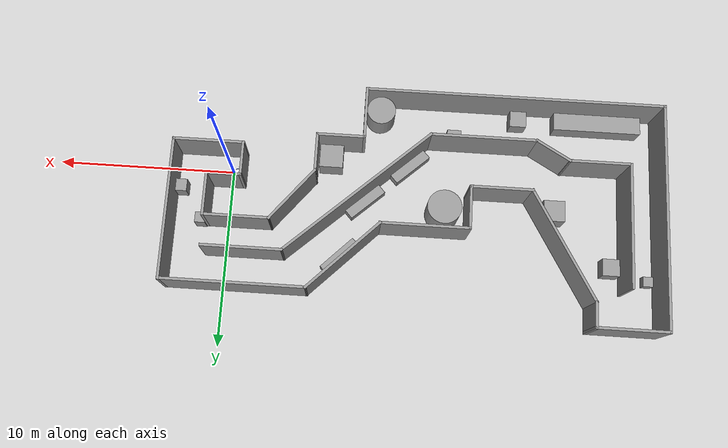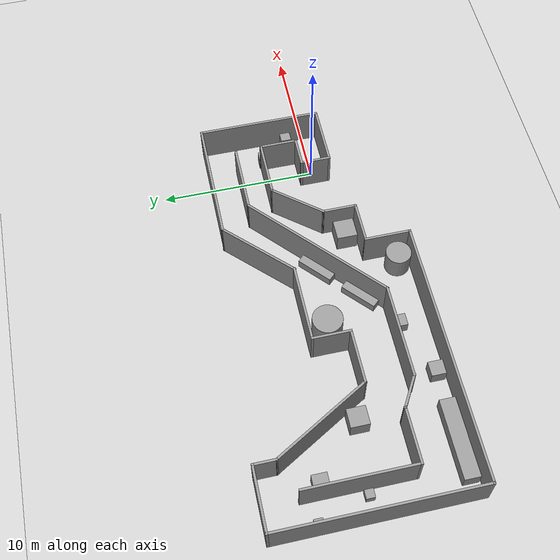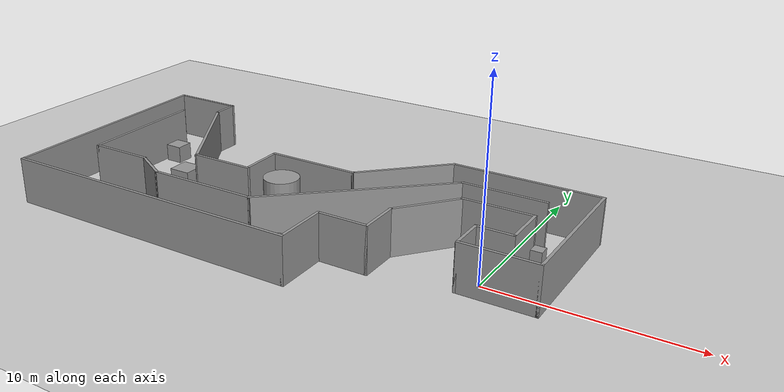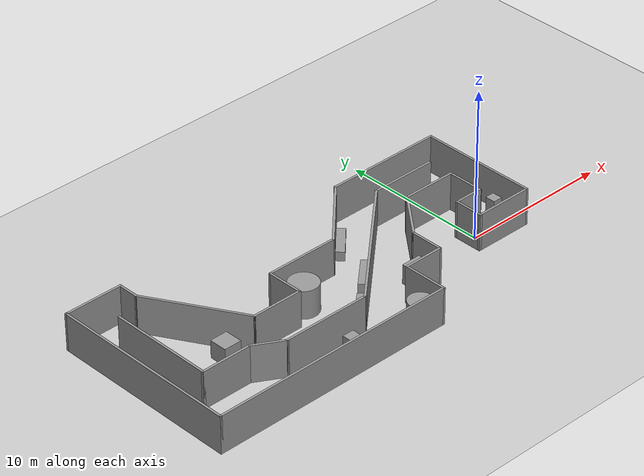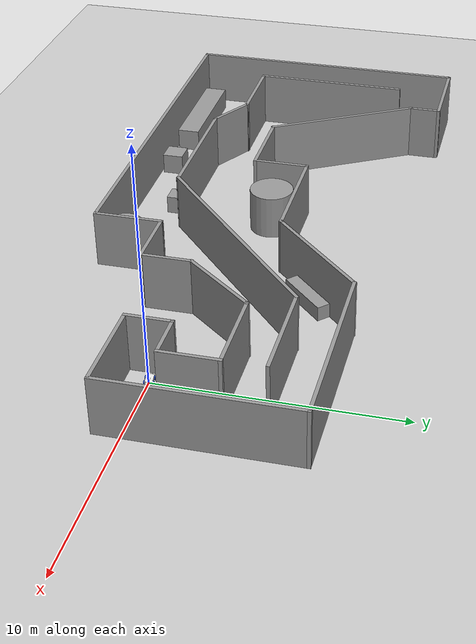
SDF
<sdf version="1.7">
 <world name="default">
  <light name="sun" type="directional">
   <pose>0 0 10 0 -0 0</pose>
   <diffuse>0.8 0.8 0.8 1</diffuse>
   <specular>0.2 0.2 0.2 1</specular>
   <attenuation>
    <range>1000</range>
    <constant>0.9</constant>
    <linear>0.01</linear>
    <quadratic>0.001</quadratic>
   </attenuation>
   <direction>-0.5 0.1 -0.9</direction>
   <spot><inner_angle>0</inner_angle><outer_angle>0</outer_angle><falloff>0</falloff></spot>
  </light>
  <model name="ground_plane">
   <static>1</static>
   <link name="link">
    <collision name="collision">
     <geometry><plane><normal>0 0 1</normal><size>100 100</size></plane></geometry>
     <surface><friction><ode><mu>100</mu><mu2>50</mu2></ode></friction></surface>
    </collision>
    <visual name="visual">
     <cast_shadows>0</cast_shadows>
     <geometry><plane><normal>0 0 1</normal><size>100 100</size></plane></geometry>
     <material>
      <script><uri>file://media/materials/scripts/gazebo.material</uri><name>Gazebo/Grey</name></script>
     </material>
    </visual>
   </link>
  </model>
  <gravity>0 0 -9.8</gravity>
  <magnetic_field>6e-06 2.3e-05 -4.2e-05</magnetic_field>
  <atmosphere type="adiabatic"/>
  <physics type="ode">
   <max_step_size>0.001</max_step_size>
   <real_time_factor>1</real_time_factor>
   <real_time_update_rate>1000</real_time_update_rate>
  </physics>
  <scene><ambient>0.4 0.4 0.4 1</ambient><background>0.7 0.7 0.7 1</background><shadows>1</shadows></scene>
  <audio><device>default</device></audio>
  <spherical_coordinates>
   <surface_model>EARTH_WGS84</surface_model>
   <latitude_deg>0</latitude_deg>
   <longitude_deg>0</longitude_deg>
   <elevation>0</elevation>
   <heading_deg>0</heading_deg>
  </spherical_coordinates>
  <model name="ackerman3">
   <link name="base_link">
    <inertial>
     <pose>0.016667 0 0.018333 0 -0 0</pose>
     <mass>0.6</mass>
     <inertia>
      <ixx>0.00577167</ixx>
      <ixy>0</ixy>
      <ixz>-0.000916667</ixz>
      <iyy>0.0132717</iyy>
      <iyz>0</iyz>
      <izz>0.015125</izz>
     </inertia>
    </inertial>
    <collision name="base_link_fixed_joint_lump__chassis_collision">
     <geometry><box><size>0.5 0.3 0.15</size></box></geometry>
    </collision>
    <collision name="base_link_fixed_joint_lump__laser_frame_collision_1">
     <pose>0.1 0 0.11 0 -0 0</pose>
     <geometry><cylinder><length>0.04</length><radius>0.05</radius></cylinder></geometry>
    </collision>
    <visual name="base_link_fixed_joint_lump__chassis_visual">
     <geometry><box><size>0.5 0.3 0.15</size></box></geometry>
     <material>
      <script><name>Gazebo/White</name><uri>file://media/materials/scripts/gazebo.material</uri></script>
     </material>
    </visual>
    <visual name="base_link_fixed_joint_lump__laser_frame_visual_1">
     <pose>0.1 0 0.11 0 -0 0</pose>
     <geometry><cylinder><length>0.04</length><radius>0.05</radius></cylinder></geometry>
     <material>
      <script><name>Gazebo/Red</name><uri>file://media/materials/scripts/gazebo.material</uri></script>
     </material>
    </visual>
    <sensor name="laser" type="ray">
     <visualize>1</visualize>
     <update_rate>10</update_rate>
     <ray>
      <scan>
       <horizontal>
        <samples>360</samples>
        <resolution>1</resolution>
        <min_angle>-3.14</min_angle>
        <max_angle>3.14</max_angle>
       </horizontal>
       <vertical><samples>1</samples><min_angle>0</min_angle><max_angle>0</max_angle></vertical>
      </scan>
      <range><min>0.3</min><max>12</max><resolution>0.01</resolution></range>
     </ray>
     <plugin name="laser_controller" filename="libgazebo_ros_ray_sensor.so">
      <ros><remapping>~/out:=scan</remapping></ros>
      <output_type>sensor_msgs/LaserScan</output_type>
      <frame_name>laser_frame</frame_name>
     </plugin>
     <pose>0.1 0 0.11 0 -0 0</pose>
    </sensor>
   </link>
   <joint name="left_steering_joint" type="revolute">
    <pose relative_to="base_link">0.154 0.15 -0.035 0 -0 0</pose>
    <parent>base_link</parent>
    <child>left_steering_link</child>
    <axis>
     <xyz>0 0 1</xyz>
     <limit><lower>-0.41</lower><upper>0.41</upper><effort>100</effort><velocity>0.5</velocity></limit>
     <dynamics><spring_reference>0</spring_reference><spring_stiffness>0</spring_stiffness></dynamics>
    </axis>
   </joint>
   <link name="left_steering_link">
    <pose relative_to="left_steering_joint">0 0 0 0 -0 0</pose>
    <inertial>
     <pose>0 0 0 1.5708 -0 0</pose>
     <mass>0.1</mass>
     <inertia>
      <ixx>2.64333e-05</ixx>
      <ixy>0</ixy>
      <ixz>0</ixz>
      <iyy>2.64333e-05</iyy>
      <iyz>0</iyz>
      <izz>5.12e-05</izz>
     </inertia>
    </inertial>
    <collision name="left_steering_link_collision">
     <pose>0 0 0 1.5708 -0 0</pose>
     <geometry><sphere><radius>0.032</radius></sphere></geometry>
     <surface><friction><ode><mu>0.5</mu><mu2>0.5</mu2></ode></friction></surface>
    </collision>
    <visual name="left_steering_link_visual">
     <pose>0 0 0 1.5708 -0 0</pose>
     <geometry><cylinder><length>0.01</length><radius>0.032</radius></cylinder></geometry>
     <material>
      <script><name>Gazebo/Blue</name><uri>file://media/materials/scripts/gazebo.material</uri></script>
     </material>
    </visual>
   </link>
   <joint name="front_left_wheel_joint" type="revolute">
    <pose relative_to="left_steering_link">0 0.025 0 0 -0 0</pose>
    <parent>left_steering_link</parent>
    <child>front_left_wheel</child>
    <axis>
     <xyz>0 1 0</xyz>
     <limit><lower>-1e+16</lower><upper>1e+16</upper></limit>
     <dynamics><spring_reference>0</spring_reference><spring_stiffness>0</spring_stiffness></dynamics>
    </axis>
   </joint>
   <link name="front_left_wheel">
    <pose relative_to="front_left_wheel_joint">0 0 0 0 -0 0</pose>
    <inertial>
     <pose>0 0 0 1.5708 -0 0</pose>
     <mass>0.1</mass>
     <inertia>
      <ixx>0.000180833</ixx>
      <ixy>0</ixy>
      <ixz>0</ixz>
      <iyy>0.000180833</iyy>
      <iyz>0</iyz>
      <izz>0.00032</izz>
     </inertia>
    </inertial>
    <collision name="front_left_wheel_collision">
     <pose>0 0 0 1.5708 -0 0</pose>
     <geometry><sphere><radius>0.08</radius></sphere></geometry>
     <surface><friction><ode><mu>0.5</mu><mu2>0.5</mu2></ode></friction></surface>
    </collision>
    <visual name="front_left_wheel_visual">
     <pose>0 0 0 1.5708 -0 0</pose>
     <geometry><cylinder><length>0.05</length><radius>0.08</radius></cylinder></geometry>
     <material>
      <script><name>Gazebo/Blue</name><uri>file://media/materials/scripts/gazebo.material</uri></script>
     </material>
    </visual>
   </link>
   <joint name="rear_left_wheel_joint" type="revolute">
    <pose relative_to="base_link">-0.154 0.175 -0.035 0 -0 0</pose>
    <parent>base_link</parent>
    <child>rear_left_wheel</child>
    <axis>
     <xyz>0 1 0</xyz>
     <limit><lower>-1e+16</lower><upper>1e+16</upper></limit>
     <dynamics><spring_reference>0</spring_reference><spring_stiffness>0</spring_stiffness></dynamics>
    </axis>
   </joint>
   <link name="rear_left_wheel">
    <pose relative_to="rear_left_wheel_joint">0 0 0 0 -0 0</pose>
    <inertial>
     <pose>0 0 0 1.5708 -0 0</pose>
     <mass>0.1</mass>
     <inertia>
      <ixx>0.000180833</ixx>
      <ixy>0</ixy>
      <ixz>0</ixz>
      <iyy>0.000180833</iyy>
      <iyz>0</iyz>
      <izz>0.00032</izz>
     </inertia>
    </inertial>
    <collision name="rear_left_wheel_collision">
     <pose>0 0 0 1.5708 -0 0</pose>
     <geometry><sphere><radius>0.08</radius></sphere></geometry>
     <surface><friction><ode><mu>0.5</mu><mu2>0.5</mu2></ode></friction></surface>
    </collision>
    <visual name="rear_left_wheel_visual">
     <pose>0 0 0 1.5708 -0 0</pose>
     <geometry><cylinder><length>0.05</length><radius>0.08</radius></cylinder></geometry>
     <material>
      <script><name>Gazebo/Blue</name><uri>file://media/materials/scripts/gazebo.material</uri></script>
     </material>
    </visual>
   </link>
   <joint name="rear_right_wheel_joint" type="revolute">
    <pose relative_to="base_link">-0.154 -0.175 -0.035 0 -0 0</pose>
    <parent>base_link</parent>
    <child>rear_right_wheel</child>
    <axis>
     <xyz>0 1 0</xyz>
     <limit><lower>-1e+16</lower><upper>1e+16</upper></limit>
     <dynamics><spring_reference>0</spring_reference><spring_stiffness>0</spring_stiffness></dynamics>
    </axis>
   </joint>
   <link name="rear_right_wheel">
    <pose relative_to="rear_right_wheel_joint">0 0 0 0 -0 0</pose>
    <inertial>
     <pose>0 0 0 1.5708 -0 0</pose>
     <mass>0.1</mass>
     <inertia>
      <ixx>0.000180833</ixx>
      <ixy>0</ixy>
      <ixz>0</ixz>
      <iyy>0.000180833</iyy>
      <iyz>0</iyz>
      <izz>0.00032</izz>
     </inertia>
    </inertial>
    <collision name="rear_right_wheel_collision">
     <pose>0 0 0 1.5708 -0 0</pose>
     <geometry><sphere><radius>0.08</radius></sphere></geometry>
     <surface><friction><ode><mu>0.5</mu><mu2>0.5</mu2></ode></friction></surface>
    </collision>
    <visual name="rear_right_wheel_visual">
     <pose>0 0 0 1.5708 -0 0</pose>
     <geometry><cylinder><length>0.05</length><radius>0.08</radius></cylinder></geometry>
     <material>
      <script><name>Gazebo/Blue</name><uri>file://media/materials/scripts/gazebo.material</uri></script>
     </material>
    </visual>
   </link>
   <joint name="right_steering_joint" type="revolute">
    <pose relative_to="base_link">0.154 -0.15 -0.035 0 -0 0</pose>
    <parent>base_link</parent>
    <child>right_steering_link</child>
    <axis>
     <xyz>0 0 1</xyz>
     <limit><lower>-0.41</lower><upper>0.41</upper><effort>100</effort><velocity>0.5</velocity></limit>
     <dynamics><spring_reference>0</spring_reference><spring_stiffness>0</spring_stiffness></dynamics>
    </axis>
   </joint>
   <link name="right_steering_link">
    <pose relative_to="right_steering_joint">0 0 0 0 -0 0</pose>
    <inertial>
     <pose>0 0 0 1.5708 -0 0</pose>
     <mass>0.1</mass>
     <inertia>
      <ixx>2.64333e-05</ixx>
      <ixy>0</ixy>
      <ixz>0</ixz>
      <iyy>2.64333e-05</iyy>
      <iyz>0</iyz>
      <izz>5.12e-05</izz>
     </inertia>
    </inertial>
    <collision name="right_steering_link_collision">
     <pose>0 0 0 1.5708 -0 0</pose>
     <geometry><sphere><radius>0.032</radius></sphere></geometry>
     <surface><friction><ode><mu>0.5</mu><mu2>0.5</mu2></ode></friction></surface>
    </collision>
    <visual name="right_steering_link_visual">
     <pose>0 0 0 1.5708 -0 0</pose>
     <geometry><cylinder><length>0.01</length><radius>0.032</radius></cylinder></geometry>
     <material>
      <script><name>Gazebo/Blue</name><uri>file://media/materials/scripts/gazebo.material</uri></script>
     </material>
    </visual>
   </link>
   <joint name="front_right_wheel_joint" type="revolute">
    <pose relative_to="right_steering_link">0 -0.025 0 0 -0 0</pose>
    <parent>right_steering_link</parent>
    <child>front_right_wheel</child>
    <axis>
     <xyz>0 1 0</xyz>
     <limit><lower>-1e+16</lower><upper>1e+16</upper></limit>
     <dynamics><spring_reference>0</spring_reference><spring_stiffness>0</spring_stiffness></dynamics>
    </axis>
   </joint>
   <link name="front_right_wheel">
    <pose relative_to="front_right_wheel_joint">0 0 0 0 -0 0</pose>
    <inertial>
     <pose>0 0 0 1.5708 -0 0</pose>
     <mass>0.1</mass>
     <inertia>
      <ixx>0.000180833</ixx>
      <ixy>0</ixy>
      <ixz>0</ixz>
      <iyy>0.000180833</iyy>
      <iyz>0</iyz>
      <izz>0.00032</izz>
     </inertia>
    </inertial>
    <collision name="front_right_wheel_collision">
     <pose>0 0 0 1.5708 -0 0</pose>
     <geometry><sphere><radius>0.08</radius></sphere></geometry>
     <surface><friction><ode><mu>0.5</mu><mu2>0.5</mu2></ode></friction></surface>
    </collision>
    <visual name="front_right_wheel_visual">
     <pose>0 0 0 1.5708 -0 0</pose>
     <geometry><cylinder><length>0.05</length><radius>0.08</radius></cylinder></geometry>
     <material>
      <script><name>Gazebo/Blue</name><uri>file://media/materials/scripts/gazebo.material</uri></script>
     </material>
    </visual>
   </link>
   <static>0</static>
   <plugin name="gazebo_ros2_control" filename="libgazebo_ros2_control.so">
    <parameters>/home/kevin-v/ros2_ws_2401/install/ackerman3/share/ackerman3/config/my_controllers_ack.yaml</parameters>
   </plugin>
   <pose>-0.072761 0.00895 0.114991 0 -1e-06 0.145311</pose>
  </model>
  <model name="challenge">
   <pose>-10.394 1.66925 0 0 -0 0</pose>
   <link name="Wall_0">
    <collision name="Wall_0_Collision">
     <geometry><box><size>2 0.15 2.5</size></box></geometry>
     <pose>0 0 1.25 0 -0 0</pose>
    </collision>
    <visual name="Wall_0_Visual">
     <pose>0 0 1.25 0 -0 0</pose>
     <geometry><box><size>2 0.15 2.5</size></box></geometry>
     <material>
      <script><uri>file://media/materials/scripts/gazebo.material</uri><name>Gazebo/Grey</name></script>
      <ambient>1 1 1 1</ambient>
     </material>
     <meta><layer>0</layer></meta>
    </visual>
    <pose>9.70401 -1.77425 0 0 -0 1.5708</pose>
   </link>
   <link name="Wall_12">
    <collision name="Wall_12_Collision">
     <geometry><box><size>8 0.15 2.5</size></box></geometry>
     <pose>0 0 1.25 0 -0 0</pose>
    </collision>
    <visual name="Wall_12_Visual">
     <pose>0 0 1.25 0 -0 0</pose>
     <geometry><box><size>8 0.15 2.5</size></box></geometry>
     <material>
      <script><uri>file://media/materials/scripts/gazebo.material</uri><name>Gazebo/Grey</name></script>
      <ambient>1 1 1 1</ambient>
     </material>
     <meta><layer>0</layer></meta>
    </visual>
    <pose>13.554 1.22575 0 0 -0 1.5708</pose>
   </link>
   <link name="Wall_13">
    <collision name="Wall_13_Collision">
     <geometry><box><size>8 0.15 2.5</size></box></geometry>
     <pose>0 0 1.25 0 -0 0</pose>
    </collision>
    <visual name="Wall_13_Visual">
     <pose>0 0 1.25 0 -0 0</pose>
     <geometry><box><size>8 0.15 2.5</size></box></geometry>
     <material>
      <script><uri>file://media/materials/scripts/gazebo.material</uri><name>Gazebo/Grey</name></script>
      <ambient>1 1 1 1</ambient>
     </material>
     <meta><layer>0</layer></meta>
    </visual>
    <pose>9.62901 5.15075 0 0 -0 3.14159</pose>
   </link>
   <link name="Wall_18">
    <collision name="Wall_18_Collision">
     <geometry><box><size>5.5 0.15 2.5</size></box></geometry>
     <pose>0 0 1.25 0 -0 0</pose>
    </collision>
    <visual name="Wall_18_Visual">
     <pose>0 0 1.25 0 -0 0</pose>
     <geometry><box><size>5.5 0.15 2.5</size></box></geometry>
     <material>
      <script><uri>file://media/materials/scripts/gazebo.material</uri><name>Gazebo/Grey</name></script>
      <ambient>1 1 1 1</ambient>
     </material>
     <meta><layer>0</layer></meta>
    </visual>
    <pose>3.8125 3.25924 0 0 -0 -2.35619</pose>
   </link>
   <link name="Wall_2">
    <collision name="Wall_2_Collision">
     <geometry><box><size>4 0.15 2.5</size></box></geometry>
     <pose>0 0 1.25 0 -0 0</pose>
    </collision>
    <visual name="Wall_2_Visual">
     <pose>0 0 1.25 0 -0 0</pose>
     <geometry><box><size>4 0.15 2.5</size></box></geometry>
     <material>
      <script><uri>file://media/materials/scripts/gazebo.material</uri><name>Gazebo/Grey</name></script>
      <ambient>1 1 1 1</ambient>
     </material>
     <meta><layer>0</layer></meta>
    </visual>
    <pose>11.629 -2.69925 0 0 -0 0</pose>
   </link>
   <link name="Wall_26">
    <collision name="Wall_26_Collision">
     <geometry><box><size>5 0.15 2.5</size></box></geometry>
     <pose>0 0 1.25 0 -0 0</pose>
    </collision>
    <visual name="Wall_26_Visual">
     <pose>0 0 1.25 0 -0 0</pose>
     <geometry><box><size>5 0.15 2.5</size></box></geometry>
     <material>
      <script><uri>file://media/materials/scripts/gazebo.material</uri><name>Gazebo/Grey</name></script>
      <ambient>1 1 1 1</ambient>
     </material>
     <meta><layer>0</layer></meta>
    </visual>
    <pose>-0.504011 1.36773 0 0 -0 3.14159</pose>
   </link>
   <link name="Wall_27">
    <collision name="Wall_27_Collision">
     <geometry><box><size>2.5 0.15 2.5</size></box></geometry>
     <pose>0 0 1.25 0 -0 0</pose>
    </collision>
    <visual name="Wall_27_Visual">
     <pose>0 0 1.25 0 -0 0</pose>
     <geometry><box><size>2.5 0.15 2.5</size></box></geometry>
     <material>
      <script><uri>file://media/materials/scripts/gazebo.material</uri><name>Gazebo/Grey</name></script>
      <ambient>1 1 1 1</ambient>
     </material>
     <meta><layer>0</layer></meta>
    </visual>
    <pose>-2.92901 0.192726 0 0 -0 -1.5708</pose>
   </link>
   <link name="Wall_28">
    <collision name="Wall_28_Collision">
     <geometry><box><size>3.5 0.15 2.5</size></box></geometry>
     <pose>0 0 1.25 0 -0 0</pose>
    </collision>
    <visual name="Wall_28_Visual">
     <pose>0 0 1.25 0 -0 0</pose>
     <geometry><box><size>3.5 0.15 2.5</size></box></geometry>
     <material>
      <script><uri>file://media/materials/scripts/gazebo.material</uri><name>Gazebo/Grey</name></script>
      <ambient>1 1 1 1</ambient>
     </material>
     <meta><layer>0</layer></meta>
    </visual>
    <pose>-4.60401 -0.982274 0 0 -0 3.14159</pose>
   </link>
   <link name="Wall_30">
    <collision name="Wall_30_Collision">
     <geometry><box><size>7 0.15 2.5</size></box></geometry>
     <pose>0 0 1.25 0 -0 0</pose>
    </collision>
    <visual name="Wall_30_Visual">
     <pose>0 0 1.25 0 -0 0</pose>
     <geometry><box><size>7 0.15 2.5</size></box></geometry>
     <material>
      <script><uri>file://media/materials/scripts/gazebo.material</uri><name>Gazebo/Grey</name></script>
      <ambient>1 1 1 1</ambient>
     </material>
     <meta><layer>0</layer></meta>
    </visual>
    <pose>-7.99151 1.98386 0 0 -0 2.0944</pose>
   </link>
   <link name="Wall_31">
    <collision name="Wall_31_Collision">
     <geometry><box><size>1.5 0.15 2.5</size></box></geometry>
     <pose>0 0 1.25 0 -0 0</pose>
    </collision>
    <visual name="Wall_31_Visual">
     <pose>0 0 1.25 0 -0 0</pose>
     <geometry><box><size>1.5 0.15 2.5</size></box></geometry>
     <material>
      <script><uri>file://media/materials/scripts/gazebo.material</uri><name>Gazebo/Grey</name></script>
      <ambient>1 1 1 1</ambient>
     </material>
     <meta><layer>0</layer></meta>
    </visual>
    <pose>-9.70401 5.625 0 0 -0 1.5708</pose>
   </link>
   <link name="Wall_32">
    <collision name="Wall_32_Collision">
     <geometry><box><size>4 0.15 2.5</size></box></geometry>
     <pose>0 0 1.25 0 -0 0</pose>
    </collision>
    <visual name="Wall_32_Visual">
     <pose>0 0 1.25 0 -0 0</pose>
     <geometry><box><size>4 0.15 2.5</size></box></geometry>
     <material>
      <script><uri>file://media/materials/scripts/gazebo.material</uri><name>Gazebo/Grey</name></script>
      <ambient>1 1 1 1</ambient>
     </material>
     <meta><layer>0</layer></meta>
    </visual>
    <pose>-11.629 6.3 0 0 -0 3.14159</pose>
   </link>
   <link name="Wall_33">
    <collision name="Wall_33_Collision">
     <geometry><box><size>12.75 0.15 2.5</size></box></geometry>
     <pose>0 0 1.25 0 -0 0</pose>
    </collision>
    <visual name="Wall_33_Visual">
     <pose>0 0 1.25 0 -0 0</pose>
     <geometry><box><size>12.75 0.15 2.5</size></box></geometry>
     <material>
      <script><uri>file://media/materials/scripts/gazebo.material</uri><name>Gazebo/Grey</name></script>
      <ambient>1 1 1 1</ambient>
     </material>
     <meta><layer>0</layer></meta>
    </visual>
    <pose>-13.554 0 0 0 -0 -1.5708</pose>
   </link>
   <link name="Wall_34">
    <collision name="Wall_34_Collision">
     <geometry><box><size>16.75 0.15 2.5</size></box></geometry>
     <pose>0 0 1.25 0 -0 0</pose>
    </collision>
    <visual name="Wall_34_Visual">
     <pose>0 0 1.25 0 -0 0</pose>
     <geometry><box><size>16.75 0.15 2.5</size></box></geometry>
     <material>
      <script><uri>file://media/materials/scripts/gazebo.material</uri><name>Gazebo/Grey</name></script>
      <ambient>1 1 1 1</ambient>
     </material>
     <meta><layer>0</layer></meta>
    </visual>
    <pose>-5.25401 -6.3 0 0 -0 0</pose>
   </link>
   <link name="Wall_35">
    <collision name="Wall_35_Collision">
     <geometry><box><size>3 0.15 2.5</size></box></geometry>
     <pose>0 0 1.25 0 -0 0</pose>
    </collision>
    <visual name="Wall_35_Visual">
     <pose>0 0 1.25 0 -0 0</pose>
     <geometry><box><size>3 0.15 2.5</size></box></geometry>
     <material>
      <script><uri>file://media/materials/scripts/gazebo.material</uri><name>Gazebo/Grey</name></script>
      <ambient>1 1 1 1</ambient>
     </material>
     <meta><layer>0</layer></meta>
    </visual>
    <pose>3.04599 -4.875 0 0 -0 1.5708</pose>
   </link>
   <link name="Wall_36">
    <collision name="Wall_36_Collision">
     <geometry><box><size>2.75 0.15 2.5</size></box></geometry>
     <pose>0 0 1.25 0 -0 0</pose>
    </collision>
    <visual name="Wall_36_Visual">
     <pose>0 0 1.25 0 -0 0</pose>
     <geometry><box><size>2.75 0.15 2.5</size></box></geometry>
     <material>
      <script><uri>file://media/materials/scripts/gazebo.material</uri><name>Gazebo/Grey</name></script>
      <ambient>1 1 1 1</ambient>
     </material>
     <meta><layer>0</layer></meta>
    </visual>
    <pose>4.34599 -3.45 0 0 -0 0</pose>
   </link>
   <link name="Wall_38">
    <collision name="Wall_38_Collision">
     <geometry><box><size>2 0.15 2.5</size></box></geometry>
     <pose>0 0 1.25 0 -0 0</pose>
    </collision>
    <visual name="Wall_38_Visual">
     <pose>0 0 1.25 0 -0 0</pose>
     <geometry><box><size>2 0.15 2.5</size></box></geometry>
     <material>
      <script><uri>file://media/materials/scripts/gazebo.material</uri><name>Gazebo/Grey</name></script>
      <ambient>1 1 1 1</ambient>
     </material>
     <meta><layer>0</layer></meta>
    </visual>
    <pose>10.629 -0.849253 0 0 -0 0</pose>
   </link>
   <link name="Wall_39">
    <collision name="Wall_39_Collision">
     <geometry><box><size>2.5 0.15 2.5</size></box></geometry>
     <pose>0 0 1.25 0 -0 0</pose>
    </collision>
    <visual name="Wall_39_Visual">
     <pose>0 0 1.25 0 -0 0</pose>
     <geometry><box><size>2.5 0.15 2.5</size></box></geometry>
     <material>
      <script><uri>file://media/materials/scripts/gazebo.material</uri><name>Gazebo/Grey</name></script>
      <ambient>1 1 1 1</ambient>
     </material>
     <meta><layer>0</layer></meta>
    </visual>
    <pose>11.554 0.325747 0 0 -0 1.5708</pose>
   </link>
   <link name="Wall_40">
    <collision name="Wall_40_Collision">
     <geometry><box><size>3.75 0.15 2.5</size></box></geometry>
     <pose>0 0 1.25 0 -0 0</pose>
    </collision>
    <visual name="Wall_40_Visual">
     <pose>0 0 1.25 0 -0 0</pose>
     <geometry><box><size>3.75 0.15 2.5</size></box></geometry>
     <material>
      <script><uri>file://media/materials/scripts/gazebo.material</uri><name>Gazebo/Grey</name></script>
      <ambient>1 1 1 1</ambient>
     </material>
     <meta><layer>0</layer></meta>
    </visual>
    <pose>9.75401 1.50075 0 0 -0 3.14159</pose>
   </link>
   <link name="Wall_43">
    <collision name="Wall_43_Collision">
     <geometry><box><size>2.25 0.15 2.5</size></box></geometry>
     <pose>0 0 1.25 0 -0 0</pose>
    </collision>
    <visual name="Wall_43_Visual">
     <pose>0 0 1.25 0 -0 0</pose>
     <geometry><box><size>2.25 0.15 2.5</size></box></geometry>
     <material>
      <script><uri>file://media/materials/scripts/gazebo.material</uri><name>Gazebo/Grey</name></script>
      <ambient>1 1 1 1</ambient>
     </material>
     <meta><layer>0</layer></meta>
    </visual>
    <pose>5.64599 -2.4 0 0 -0 1.5708</pose>
   </link>
   <link name="Wall_44">
    <collision name="Wall_44_Collision">
     <geometry><box><size>3.81793 0.15 2.5</size></box></geometry>
     <pose>0 0 1.25 0 -0 0</pose>
    </collision>
    <visual name="Wall_44_Visual">
     <pose>0 0 1.25 0 -0 0</pose>
     <geometry><box><size>3.81793 0.15 2.5</size></box></geometry>
     <material>
      <script><uri>file://media/materials/scripts/gazebo.material</uri><name>Gazebo/Grey</name></script>
      <ambient>1 1 1 1</ambient>
     </material>
     <meta><layer>0</layer></meta>
    </visual>
    <pose>6.8 0.075374 0 0 -0 0.890217</pose>
   </link>
   <link name="Wall_61">
    <collision name="Wall_61_Collision">
     <geometry><box><size>4.5 0.15 2.5</size></box></geometry>
     <pose>0 0 1.25 0 -0 0</pose>
    </collision>
    <visual name="Wall_61_Visual">
     <pose>0 0 1.25 0 -0 0</pose>
     <geometry><box><size>4.5 0.15 2.5</size></box></geometry>
     <material>
      <script><uri>file://media/materials/scripts/gazebo.material</uri><name>Gazebo/Grey</name></script>
      <ambient>1 1 1 1</ambient>
     </material>
     <meta><layer>0</layer></meta>
    </visual>
    <pose>9.30026 3.20673 0 0 -0 0</pose>
   </link>
   <link name="Wall_65">
    <collision name="Wall_65_Collision">
     <geometry><box><size>7 0.15 2.5</size></box></geometry>
     <pose>0 0 1.25 0 -0 0</pose>
    </collision>
    <visual name="Wall_65_Visual">
     <pose>0 0 1.25 0 -0 0</pose>
     <geometry><box><size>7 0.15 2.5</size></box></geometry>
     <material>
      <script><uri>file://media/materials/scripts/gazebo.material</uri><name>Gazebo/Grey</name></script>
      <ambient>1 1 1 1</ambient>
     </material>
     <meta><layer>0</layer></meta>
    </visual>
    <pose>-11.6461 0.631301 0 0 -0 -1.5708</pose>
   </link>
   <link name="Wall_66">
    <collision name="Wall_66_Collision">
     <geometry><box><size>3.5 0.15 2.5</size></box></geometry>
     <pose>0 0 1.25 0 -0 0</pose>
    </collision>
    <visual name="Wall_66_Visual">
     <pose>0 0 1.25 0 -0 0</pose>
     <geometry><box><size>3.5 0.15 2.5</size></box></geometry>
     <material>
      <script><uri>file://media/materials/scripts/gazebo.material</uri><name>Gazebo/Grey</name></script>
      <ambient>1 1 1 1</ambient>
     </material>
     <meta><layer>0</layer></meta>
    </visual>
    <pose>-9.97112 -2.7937 0 0 -0 0</pose>
   </link>
   <link name="Wall_67">
    <collision name="Wall_67_Collision">
     <geometry><box><size>2.25 0.15 2.5</size></box></geometry>
     <pose>0 0 1.25 0 -0 0</pose>
    </collision>
    <visual name="Wall_67_Visual">
     <pose>0 0 1.25 0 -0 0</pose>
     <geometry><box><size>2.25 0.15 2.5</size></box></geometry>
     <material>
      <script><uri>file://media/materials/scripts/gazebo.material</uri><name>Gazebo/Grey</name></script>
      <ambient>1 1 1 1</ambient>
     </material>
     <meta><layer>0</layer></meta>
    </visual>
    <pose>-7.3868 -3.3187 0 0 -0 -0.523599</pose>
   </link>
   <link name="Wall_68">
    <collision name="Wall_68_Collision">
     <geometry><box><size>6 0.15 2.5</size></box></geometry>
     <pose>0 0 1.25 0 -0 0</pose>
    </collision>
    <visual name="Wall_68_Visual">
     <pose>0 0 1.25 0 -0 0</pose>
     <geometry><box><size>6 0.15 2.5</size></box></geometry>
     <material>
      <script><uri>file://media/materials/scripts/gazebo.material</uri><name>Gazebo/Grey</name></script>
      <ambient>1 1 1 1</ambient>
     </material>
     <meta><layer>0</layer></meta>
    </visual>
    <pose>-3.55247 -3.8437 0 0 -0 0</pose>
   </link>
   <link name="Wall_69">
    <collision name="Wall_69_Collision">
     <geometry><box><size>10.6292 0.15 2.5</size></box></geometry>
     <pose>0 0 1.25 0 -0 0</pose>
    </collision>
    <visual name="Wall_69_Visual">
     <pose>0 0 1.25 0 -0 0</pose>
     <geometry><box><size>10.6292 0.15 2.5</size></box></geometry>
     <material>
      <script><uri>file://media/materials/scripts/gazebo.material</uri><name>Gazebo/Grey</name></script>
      <ambient>1 1 1 1</ambient>
     </material>
     <meta><layer>0</layer></meta>
    </visual>
    <pose>3.2489 -0.318482 0 0 -0 0.737991</pose>
   </link>
   <static>1</static>
  </model>
  <model name="unit_box">
   <pose>2.77186 1.18701 0.499997 -3e-06 6e-06 5.3e-05</pose>
   <link name="link">
    <inertial>
     <mass>1</mass>
     <inertia>
      <ixx>0.166667</ixx>
      <ixy>0</ixy>
      <ixz>0</ixz>
      <iyy>0.166667</iyy>
      <iyz>0</iyz>
      <izz>0.166667</izz>
     </inertia>
    </inertial>
    <collision name="collision"><geometry><box><size>0.626256 0.681466 1</size></box></geometry></collision>
    <visual name="visual">
     <geometry><box><size>0.626256 0.681466 1</size></box></geometry>
     <material>
      <script><name>Gazebo/Grey</name><uri>file://media/materials/scripts/gazebo.material</uri></script>
     </material>
    </visual>
   </link>
  </model>
  <model name="unit_box_clone">
   <pose>1.52772 2.99434 0.5 0 0 -3.1e-05</pose>
   <link name="link">
    <inertial>
     <mass>1</mass>
     <inertia>
      <ixx>0.166667</ixx>
      <ixy>0</ixy>
      <ixz>0</ixz>
      <iyy>0.166667</iyy>
      <iyz>0</iyz>
      <izz>0.166667</izz>
     </inertia>
    </inertial>
    <collision name="collision"><geometry><box><size>0.585434 0.593219 1</size></box></geometry></collision>
    <visual name="visual">
     <geometry><box><size>0.585434 0.593219 1</size></box></geometry>
     <material>
      <script><name>Gazebo/Grey</name><uri>file://media/materials/scripts/gazebo.material</uri></script>
     </material>
    </visual>
   </link>
  </model>
  <model name="unit_box_0">
   <pose>-6.37963 4.62557 0.316337 2.35623 -1.57079 3.14159</pose>
   <link name="link">
    <inertial>
     <mass>1</mass>
     <inertia>
      <ixx>0.166667</ixx>
      <ixy>0</ixy>
      <ixz>0</ixz>
      <iyy>0.166667</iyy>
      <iyz>0</iyz>
      <izz>0.166667</izz>
     </inertia>
    </inertial>
    <collision name="collision"><geometry><box><size>0.632674 2.41325 0.563495</size></box></geometry></collision>
    <visual name="visual">
     <geometry><box><size>0.632674 2.41325 0.563495</size></box></geometry>
     <material>
      <script><name>Gazebo/Grey</name><uri>file://media/materials/scripts/gazebo.material</uri></script>
     </material>
    </visual>
   </link>
  </model>
  <model name="unit_box_0_clone">
   <pose>-7.62448 1.40176 0.316337 2.30588 -1.57079 3.14159</pose>
   <link name="link">
    <inertial>
     <mass>1</mass>
     <inertia>
      <ixx>0.166667</ixx>
      <ixy>0</ixy>
      <ixz>0</ixz>
      <iyy>0.166667</iyy>
      <iyz>0</iyz>
      <izz>0.166667</izz>
     </inertia>
    </inertial>
    <collision name="collision"><geometry><box><size>0.632674 2.41325 0.563495</size></box></geometry></collision>
    <visual name="visual">
     <geometry><box><size>0.632674 2.41325 0.563495</size></box></geometry>
     <material>
      <script><name>Gazebo/Grey</name><uri>file://media/materials/scripts/gazebo.material</uri></script>
     </material>
    </visual>
   </link>
  </model>
  <model name="unit_box_0_clone_clone">
   <pose>-10.0629 -0.819962 0.316337 2.30844 -1.57079 3.14159</pose>
   <link name="link">
    <inertial>
     <mass>1</mass>
     <inertia>
      <ixx>0.166667</ixx>
      <ixy>0</ixy>
      <ixz>0</ixz>
      <iyy>0.166667</iyy>
      <iyz>0</iyz>
      <izz>0.166667</izz>
     </inertia>
    </inertial>
    <collision name="collision"><geometry><box><size>0.632674 2.41325 0.563495</size></box></geometry></collision>
    <visual name="visual">
     <geometry><box><size>0.632674 2.41325 0.563495</size></box></geometry>
     <material>
      <script><name>Gazebo/Grey</name><uri>file://media/materials/scripts/gazebo.material</uri></script>
     </material>
    </visual>
   </link>
  </model>
  <model name="unit_cylinder">
   <pose>-11.9788 1.76239 0.95409 0 -0 0</pose>
   <link name="link">
    <inertial>
     <mass>1</mass>
     <inertia><ixx>0.145833</ixx><ixy>0</ixy><ixz>0</ixz><iyy>0.145833</iyy><iyz>0</iyz><izz>0.125</izz></inertia>
    </inertial>
    <collision name="collision">
     <geometry><cylinder><radius>0.954088</radius><length>1.90818</length></cylinder></geometry>
    </collision>
    <visual name="visual">
     <geometry><cylinder><radius>0.954088</radius><length>1.90818</length></cylinder></geometry>
     <material>
      <script><name>Gazebo/Grey</name><uri>file://media/materials/scripts/gazebo.material</uri></script>
     </material>
    </visual>
   </link>
  </model>
  <model name="unit_box_1">
   <pose>-18.1596 1.42481 0.59205 0 8e-06 0</pose>
   <link name="link">
    <inertial>
     <mass>1</mass>
     <inertia>
      <ixx>0.166667</ixx>
      <ixy>0</ixy>
      <ixz>0</ixz>
      <iyy>0.166667</iyy>
      <iyz>0</iyz>
      <izz>0.166667</izz>
     </inertia>
    </inertial>
    <collision name="collision"><geometry><box><size>1.18411 1.18411 1.18411</size></box></geometry></collision>
    <visual name="visual">
     <geometry><box><size>1.18411 1.18411 1.18411</size></box></geometry>
     <material>
      <script><name>Gazebo/Grey</name><uri>file://media/materials/scripts/gazebo.material</uri></script>
     </material>
    </visual>
   </link>
  </model>
  <model name="unit_box_1_clone">
   <pose>-21.35 4.38571 0.472772 0 -0 0</pose>
   <link name="link">
    <inertial>
     <mass>1</mass>
     <inertia>
      <ixx>0.166667</ixx>
      <ixy>0</ixy>
      <ixz>0</ixz>
      <iyy>0.166667</iyy>
      <iyz>0</iyz>
      <izz>0.166667</izz>
     </inertia>
    </inertial>
    <collision name="collision">
     <geometry><box><size>0.945544 0.945544 0.945544</size></box></geometry>
    </collision>
    <visual name="visual">
     <geometry><box><size>0.945544 0.945544 0.945544</size></box></geometry>
     <material>
      <script><name>Gazebo/Grey</name><uri>file://media/materials/scripts/gazebo.material</uri></script>
     </material>
    </visual>
   </link>
  </model>
  <model name="unit_box_1_clone_clone">
   <pose>-23.4941 4.97562 0.273164 0 -0 0</pose>
   <link name="link">
    <inertial>
     <mass>1</mass>
     <inertia>
      <ixx>0.166667</ixx>
      <ixy>0</ixy>
      <ixz>0</ixz>
      <iyy>0.166667</iyy>
      <iyz>0</iyz>
      <izz>0.166667</izz>
     </inertia>
    </inertial>
    <collision name="collision">
     <geometry><box><size>0.546328 0.546328 0.546328</size></box></geometry>
    </collision>
    <visual name="visual">
     <geometry><box><size>0.546328 0.546328 0.546328</size></box></geometry>
     <material>
      <script><name>Gazebo/Grey</name><uri>file://media/materials/scripts/gazebo.material</uri></script>
     </material>
    </visual>
   </link>
  </model>
  <model name="unit_box_1_clone_clone_clone">
   <pose>-22.4947 1.82843 0.273164 0 -0 0</pose>
   <link name="link">
    <inertial>
     <mass>1</mass>
     <inertia>
      <ixx>0.166667</ixx>
      <ixy>0</ixy>
      <ixz>0</ixz>
      <iyy>0.166667</iyy>
      <iyz>0</iyz>
      <izz>0.166667</izz>
     </inertia>
    </inertial>
    <collision name="collision">
     <geometry><box><size>0.546328 0.546328 0.546328</size></box></geometry>
    </collision>
    <visual name="visual">
     <geometry><box><size>0.546328 0.546328 0.546328</size></box></geometry>
     <material>
      <script><name>Gazebo/Grey</name><uri>file://media/materials/scripts/gazebo.material</uri></script>
     </material>
    </visual>
   </link>
  </model>
  <model name="unit_box_1_clone_clone_clone_clone">
   <pose>-12.4836 -2.73346 0.394624 0 -0 0</pose>
   <link name="link">
    <inertial>
     <mass>1</mass>
     <inertia>
      <ixx>0.166667</ixx>
      <ixy>0</ixy>
      <ixz>0</ixz>
      <iyy>0.166667</iyy>
      <iyz>0</iyz>
      <izz>0.166667</izz>
     </inertia>
    </inertial>
    <collision name="collision">
     <geometry><box><size>0.789247 0.789247 0.789247</size></box></geometry>
    </collision>
    <visual name="visual">
     <geometry><box><size>0.789247 0.789247 0.789247</size></box></geometry>
     <material>
      <script><name>Gazebo/Grey</name><uri>file://media/materials/scripts/gazebo.material</uri></script>
     </material>
    </visual>
   </link>
  </model>
  <model name="unit_box_1_clone_clone_clone_clone_0">
   <pose>-16.0936 -3.9787 0.461071 0 -0 0.000258</pose>
   <link name="link">
    <inertial>
     <mass>1</mass>
     <inertia>
      <ixx>0.166667</ixx>
      <ixy>0</ixy>
      <ixz>0</ixz>
      <iyy>0.166667</iyy>
      <iyz>0</iyz>
      <izz>0.166667</izz>
     </inertia>
    </inertial>
    <collision name="collision">
     <geometry><box><size>0.922142 0.922142 0.922142</size></box></geometry>
    </collision>
    <visual name="visual">
     <geometry><box><size>0.922142 0.922142 0.922142</size></box></geometry>
     <material>
      <script><name>Gazebo/Grey</name><uri>file://media/materials/scripts/gazebo.material</uri></script>
     </material>
    </visual>
   </link>
  </model>
  <model name="unit_cylinder_0">
   <pose>-8.22964 -3.74687 0.806549 -2e-06 -2e-06 0.009588</pose>
   <link name="link">
    <inertial>
     <mass>1</mass>
     <inertia><ixx>0.145833</ixx><ixy>0</ixy><ixz>0</ixz><iyy>0.145833</iyy><iyz>0</iyz><izz>0.125</izz></inertia>
    </inertial>
    <collision name="collision">
     <geometry><cylinder><radius>0.80656</radius><length>1.61312</length></cylinder></geometry>
    </collision>
    <visual name="visual">
     <geometry><cylinder><radius>0.80656</radius><length>1.61312</length></cylinder></geometry>
     <material>
      <script><name>Gazebo/Grey</name><uri>file://media/materials/scripts/gazebo.material</uri></script>
     </material>
    </visual>
   </link>
  </model>
  <model name="unit_box_2">
   <pose>-5.57371 -0.948402 0.65511 0 -0 4e-06</pose>
   <link name="link">
    <inertial>
     <mass>1</mass>
     <inertia>
      <ixx>0.166667</ixx>
      <ixy>0</ixy>
      <ixz>0</ixz>
      <iyy>0.166667</iyy>
      <iyz>0</iyz>
      <izz>0.166667</izz>
     </inertia>
    </inertial>
    <collision name="collision"><geometry><box><size>1.31022 1.31022 1.31022</size></box></geometry></collision>
    <visual name="visual">
     <geometry><box><size>1.31022 1.31022 1.31022</size></box></geometry>
     <material>
      <script><name>Gazebo/Grey</name><uri>file://media/materials/scripts/gazebo.material</uri></script>
     </material>
    </visual>
   </link>
  </model>
  <model name="unit_box_3">
   <pose>-20.5885 -3.95922 0.498031 0 -0.000801 1.3e-05</pose>
   <link name="link">
    <inertial>
     <mass>1</mass>
     <inertia>
      <ixx>0.166667</ixx>
      <ixy>0</ixy>
      <ixz>0</ixz>
      <iyy>0.166667</iyy>
      <iyz>0</iyz>
      <izz>0.166667</izz>
     </inertia>
    </inertial>
    <collision name="collision"><geometry><box><size>4.91878 1 1</size></box></geometry></collision>
    <visual name="visual">
     <geometry><box><size>4.91878 1 1</size></box></geometry>
     <material>
      <script><name>Gazebo/Grey</name><uri>file://media/materials/scripts/gazebo.material</uri></script>
     </material>
    </visual>
   </link>
  </model>
  <light name="user_point_light_0" type="point">
   <pose>-21.5826 -4.00936 1 0 -0 0</pose>
   <diffuse>0.5 0.5 0.5 1</diffuse>
   <specular>0.1 0.1 0.1 1</specular>
   <attenuation>
    <range>20</range>
    <constant>0.5</constant>
    <linear>0.01</linear>
    <quadratic>0.001</quadratic>
   </attenuation>
   <cast_shadows>0</cast_shadows>
   <direction>0 0 -1</direction>
  </light>
  <light name="user_point_light_1" type="point">
   <pose>-18.4667 1.60332 1 0 -0 0</pose>
   <diffuse>0.5 0.5 0.5 1</diffuse>
   <specular>0.1 0.1 0.1 1</specular>
   <attenuation>
    <range>20</range>
    <constant>0.5</constant>
    <linear>0.01</linear>
    <quadratic>0.001</quadratic>
   </attenuation>
   <cast_shadows>0</cast_shadows>
   <direction>0 0 -1</direction>
  </light>
  <light name="user_point_light_2" type="point">
   <pose>-11.5764 1.75733 1 0 -0 0</pose>
   <diffuse>0.5 0.5 0.5 1</diffuse>
   <specular>0.1 0.1 0.1 1</specular>
   <attenuation>
    <range>20</range>
    <constant>0.5</constant>
    <linear>0.01</linear>
    <quadratic>0.001</quadratic>
   </attenuation>
   <cast_shadows>0</cast_shadows>
   <direction>0 0 -1</direction>
  </light>
  <light name="user_point_light_3" type="point">
   <pose>-6.3194 4.59234 1 0 -0 0</pose>
   <diffuse>0.5 0.5 0.5 1</diffuse>
   <specular>0.1 0.1 0.1 1</specular>
   <attenuation>
    <range>20</range>
    <constant>0.5</constant>
    <linear>0.01</linear>
    <quadratic>0.001</quadratic>
   </attenuation>
   <cast_shadows>0</cast_shadows>
   <direction>0 0 -1</direction>
  </light>
  <light name="user_point_light_4" type="point">
   <pose>-21.9059 8.14943 1 0 -0 0</pose>
   <diffuse>0.5 0.5 0.5 1</diffuse>
   <specular>0.1 0.1 0.1 1</specular>
   <attenuation>
    <range>20</range>
    <constant>0.5</constant>
    <linear>0.01</linear>
    <quadratic>0.001</quadratic>
   </attenuation>
   <cast_shadows>0</cast_shadows>
   <direction>0 0 -1</direction>
  </light>
  <light name="user_point_light_5" type="point">
   <pose>-7.1431 -1.80829 1 0 -0 0</pose>
   <diffuse>0.5 0.5 0.5 1</diffuse>
   <specular>0.1 0.1 0.1 1</specular>
   <attenuation>
    <range>20</range>
    <constant>0.5</constant>
    <linear>0.01</linear>
    <quadratic>0.001</quadratic>
   </attenuation>
   <cast_shadows>0</cast_shadows>
   <direction>0 0 -1</direction>
  </light>
 </world>
</sdf>
